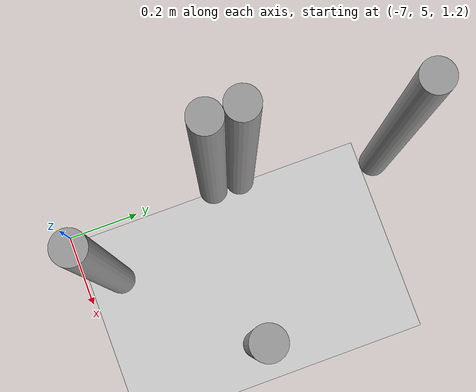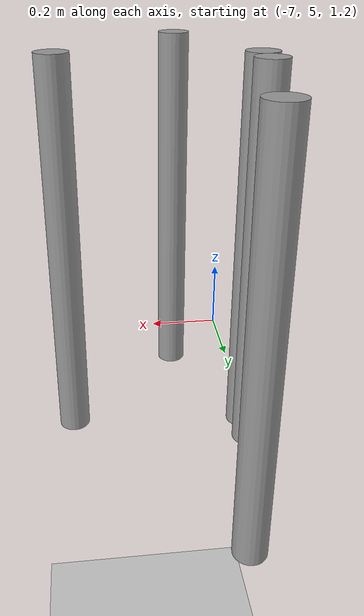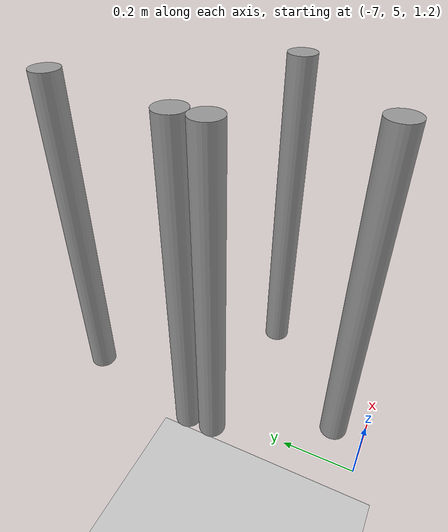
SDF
<sdf version="1.6">
 <world name="default">
  <model name="ground_plane">
   <static>1</static>
   <link name="link">
    <collision name="collision">
     <geometry><plane><normal>0 0 1</normal><size>100 100</size></plane></geometry>
     <surface>
      <contact><collide_bitmask>65535</collide_bitmask></contact>
      <friction><ode><mu>100</mu><mu2>50</mu2></ode></friction>
     </surface>
    </collision>
    <visual name="visual">
     <cast_shadows>0</cast_shadows>
     <geometry><plane><normal>0 0 1</normal><size>100 100</size></plane></geometry>
     <material>
      <script><uri>file://media/materials/scripts/gazebo.material</uri><name>Gazebo/Grey</name></script>
     </material>
    </visual>
   </link>
  </model>
  <model name="unit_cylinder_clone_16_clone_15">
   <link name="link">
    <inertial>
     <mass>10000.1</mass>
     <inertia><ixx>837.395</ixx><ixy>0</ixy><ixz>0</ixz><iyy>837.395</iyy><iyz>0</iyz><izz>8.09922</izz></inertia>
    </inertial>
    <visual name="visual">
     <geometry><cylinder><radius>0.0402468</radius><length>1</length></cylinder></geometry>
     <material>
      <script><name>Gazebo/Grey</name><uri>file://media/materials/scripts/gazebo.material</uri></script>
      <shader type="vertex"><normal_map>__default__</normal_map></shader>
     </material>
    </visual>
    <collision name="collision">
     <geometry><cylinder><radius>0.040247</radius><length>1</length></cylinder></geometry>
     <surface>
      <friction>
       <ode><mu>1</mu><mu2>1</mu2><fdir1>0 0 0</fdir1><slip1>0</slip1><slip2>0</slip2></ode>
       <torsional>
        <coefficient>1</coefficient>
        <patch_radius>0</patch_radius>
        <surface_radius>0</surface_radius>
        <use_patch_radius>1</use_patch_radius>
        <ode><slip>0</slip></ode>
       </torsional>
      </friction>
      <bounce><restitution_coefficient>0</restitution_coefficient><threshold>1e+06</threshold></bounce>
      <contact>
       <collide_without_contact>0</collide_without_contact>
       <collide_without_contact_bitmask>1</collide_without_contact_bitmask>
       <collide_bitmask>1</collide_bitmask>
       <ode>
        <soft_cfm>0</soft_cfm>
        <soft_erp>0.2</soft_erp>
        <kp>1e+13</kp>
        <kd>1</kd>
        <max_vel>0.01</max_vel>
        <min_depth>0</min_depth>
       </ode>
       <bullet>
        <split_impulse>1</split_impulse>
        <split_impulse_penetration_threshold>-0.01</split_impulse_penetration_threshold>
        <soft_cfm>0</soft_cfm>
        <soft_erp>0.2</soft_erp>
        <kp>1e+13</kp>
        <kd>1</kd>
       </bullet>
      </contact>
     </surface>
    </collision>
   </link>
   <static>0</static>
   <pose>-7.00003 5.51305 1.63725 0 -1e-06 0.001204</pose>
  </model>
  <model name="unit_cylinder_clone_16_clone_19">
   <link name="link">
    <inertial>
     <mass>10000.1</mass>
     <inertia><ixx>837.395</ixx><ixy>0</ixy><ixz>0</ixz><iyy>837.395</iyy><iyz>0</iyz><izz>8.09922</izz></inertia>
    </inertial>
    <visual name="visual">
     <geometry><cylinder><radius>0.0402468</radius><length>1</length></cylinder></geometry>
     <material>
      <script><name>Gazebo/Grey</name><uri>file://media/materials/scripts/gazebo.material</uri></script>
      <shader type="vertex"><normal_map>__default__</normal_map></shader>
     </material>
    </visual>
    <collision name="collision">
     <geometry><cylinder><radius>0.040247</radius><length>1</length></cylinder></geometry>
     <surface>
      <friction>
       <ode><mu>1</mu><mu2>1</mu2><fdir1>0 0 0</fdir1><slip1>0</slip1><slip2>0</slip2></ode>
       <torsional>
        <coefficient>1</coefficient>
        <patch_radius>0</patch_radius>
        <surface_radius>0</surface_radius>
        <use_patch_radius>1</use_patch_radius>
        <ode><slip>0</slip></ode>
       </torsional>
      </friction>
      <bounce><restitution_coefficient>0</restitution_coefficient><threshold>1e+06</threshold></bounce>
      <contact>
       <collide_without_contact>0</collide_without_contact>
       <collide_without_contact_bitmask>1</collide_without_contact_bitmask>
       <collide_bitmask>1</collide_bitmask>
       <ode>
        <soft_cfm>0</soft_cfm>
        <soft_erp>0.2</soft_erp>
        <kp>1e+13</kp>
        <kd>1</kd>
        <max_vel>0.01</max_vel>
        <min_depth>0</min_depth>
       </ode>
       <bullet>
        <split_impulse>1</split_impulse>
        <split_impulse_penetration_threshold>-0.01</split_impulse_penetration_threshold>
        <soft_cfm>0</soft_cfm>
        <soft_erp>0.2</soft_erp>
        <kp>1e+13</kp>
        <kd>1</kd>
       </bullet>
      </contact>
     </surface>
    </collision>
   </link>
   <static>0</static>
   <pose>-6.84585 5.09244 1.63725 -2e-06 1e-06 -0.000518</pose>
  </model>
  <model name="unit_cylinder_clone_16_clone_20">
   <link name="link">
    <inertial>
     <mass>10000.1</mass>
     <inertia><ixx>837.395</ixx><ixy>0</ixy><ixz>0</ixz><iyy>837.395</iyy><iyz>0</iyz><izz>8.09922</izz></inertia>
    </inertial>
    <visual name="visual">
     <geometry><cylinder><radius>0.0402468</radius><length>1</length></cylinder></geometry>
     <material>
      <script><name>Gazebo/Grey</name><uri>file://media/materials/scripts/gazebo.material</uri></script>
      <shader type="vertex"><normal_map>__default__</normal_map></shader>
     </material>
    </visual>
    <collision name="collision">
     <geometry><cylinder><radius>0.040247</radius><length>1</length></cylinder></geometry>
     <surface>
      <friction>
       <ode><mu>1</mu><mu2>1</mu2><fdir1>0 0 0</fdir1><slip1>0</slip1><slip2>0</slip2></ode>
       <torsional>
        <coefficient>1</coefficient>
        <patch_radius>0</patch_radius>
        <surface_radius>0</surface_radius>
        <use_patch_radius>1</use_patch_radius>
        <ode><slip>0</slip></ode>
       </torsional>
      </friction>
      <bounce><restitution_coefficient>0</restitution_coefficient><threshold>1e+06</threshold></bounce>
      <contact>
       <collide_without_contact>0</collide_without_contact>
       <collide_without_contact_bitmask>1</collide_without_contact_bitmask>
       <collide_bitmask>1</collide_bitmask>
       <ode>
        <soft_cfm>0</soft_cfm>
        <soft_erp>0.2</soft_erp>
        <kp>1e+13</kp>
        <kd>1</kd>
        <max_vel>0.01</max_vel>
        <min_depth>0</min_depth>
       </ode>
       <bullet>
        <split_impulse>1</split_impulse>
        <split_impulse_penetration_threshold>-0.01</split_impulse_penetration_threshold>
        <soft_cfm>0</soft_cfm>
        <soft_erp>0.2</soft_erp>
        <kp>1e+13</kp>
        <kd>1</kd>
       </bullet>
      </contact>
     </surface>
    </collision>
   </link>
   <static>0</static>
   <pose>-6.99996 5.43256 1.63725 2e-06 1e-06 0.001012</pose>
  </model>
  <model name="unit_cylinder_clone_16_clone_21">
   <link name="link">
    <inertial>
     <mass>10000.1</mass>
     <inertia><ixx>837.395</ixx><ixy>0</ixy><ixz>0</ixz><iyy>837.395</iyy><iyz>0</iyz><izz>8.09922</izz></inertia>
    </inertial>
    <visual name="visual">
     <geometry><cylinder><radius>0.0402468</radius><length>1</length></cylinder></geometry>
     <material>
      <script><name>Gazebo/Grey</name><uri>file://media/materials/scripts/gazebo.material</uri></script>
      <shader type="vertex"><normal_map>__default__</normal_map></shader>
     </material>
    </visual>
    <collision name="collision">
     <geometry><cylinder><radius>0.040247</radius><length>1</length></cylinder></geometry>
     <surface>
      <friction>
       <ode><mu>1</mu><mu2>1</mu2><fdir1>0 0 0</fdir1><slip1>0</slip1><slip2>0</slip2></ode>
       <torsional>
        <coefficient>1</coefficient>
        <patch_radius>0</patch_radius>
        <surface_radius>0</surface_radius>
        <use_patch_radius>1</use_patch_radius>
        <ode><slip>0</slip></ode>
       </torsional>
      </friction>
      <bounce><restitution_coefficient>0</restitution_coefficient><threshold>1e+06</threshold></bounce>
      <contact>
       <collide_without_contact>0</collide_without_contact>
       <collide_without_contact_bitmask>1</collide_without_contact_bitmask>
       <collide_bitmask>1</collide_bitmask>
       <ode>
        <soft_cfm>0</soft_cfm>
        <soft_erp>0.2</soft_erp>
        <kp>1e+13</kp>
        <kd>1</kd>
        <max_vel>0.01</max_vel>
        <min_depth>0</min_depth>
       </ode>
       <bullet>
        <split_impulse>1</split_impulse>
        <split_impulse_penetration_threshold>-0.01</split_impulse_penetration_threshold>
        <soft_cfm>0</soft_cfm>
        <soft_erp>0.2</soft_erp>
        <kp>1e+13</kp>
        <kd>1</kd>
       </bullet>
      </contact>
     </surface>
    </collision>
   </link>
   <static>0</static>
   <pose>-6.53628 5.39726 1.63725 1e-06 1e-06 -0.000471</pose>
  </model>
  <model name="unit_cylinder_clone_16_clone_22">
   <link name="link">
    <inertial>
     <mass>10000.1</mass>
     <inertia><ixx>837.395</ixx><ixy>0</ixy><ixz>0</ixz><iyy>837.395</iyy><iyz>0</iyz><izz>8.09922</izz></inertia>
    </inertial>
    <visual name="visual">
     <geometry><cylinder><radius>0.0402468</radius><length>1</length></cylinder></geometry>
     <material>
      <script><name>Gazebo/Grey</name><uri>file://media/materials/scripts/gazebo.material</uri></script>
      <shader type="vertex"><normal_map>__default__</normal_map></shader>
     </material>
    </visual>
    <collision name="collision">
     <geometry><cylinder><radius>0.040247</radius><length>1</length></cylinder></geometry>
     <surface>
      <friction>
       <ode><mu>1</mu><mu2>1</mu2><fdir1>0 0 0</fdir1><slip1>0</slip1><slip2>0</slip2></ode>
       <torsional>
        <coefficient>1</coefficient>
        <patch_radius>0</patch_radius>
        <surface_radius>0</surface_radius>
        <use_patch_radius>1</use_patch_radius>
        <ode><slip>0</slip></ode>
       </torsional>
      </friction>
      <bounce><restitution_coefficient>0</restitution_coefficient><threshold>1e+06</threshold></bounce>
      <contact>
       <collide_without_contact>0</collide_without_contact>
       <collide_without_contact_bitmask>1</collide_without_contact_bitmask>
       <collide_bitmask>1</collide_bitmask>
       <ode>
        <soft_cfm>0</soft_cfm>
        <soft_erp>0.2</soft_erp>
        <kp>1e+13</kp>
        <kd>1</kd>
        <max_vel>0.01</max_vel>
        <min_depth>0</min_depth>
       </ode>
       <bullet>
        <split_impulse>1</split_impulse>
        <split_impulse_penetration_threshold>-0.01</split_impulse_penetration_threshold>
        <soft_cfm>0</soft_cfm>
        <soft_erp>0.2</soft_erp>
        <kp>1e+13</kp>
        <kd>1</kd>
       </bullet>
      </contact>
     </surface>
    </collision>
   </link>
   <static>0</static>
   <pose>-6.918 5.89826 1.63725 -1e-06 -1e-06 -0.00036</pose>
  </model>
 </world>
</sdf>
